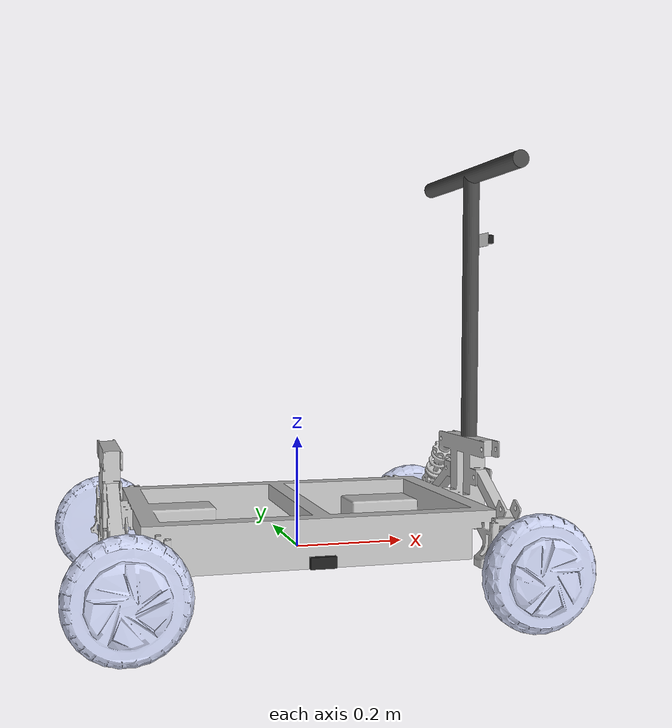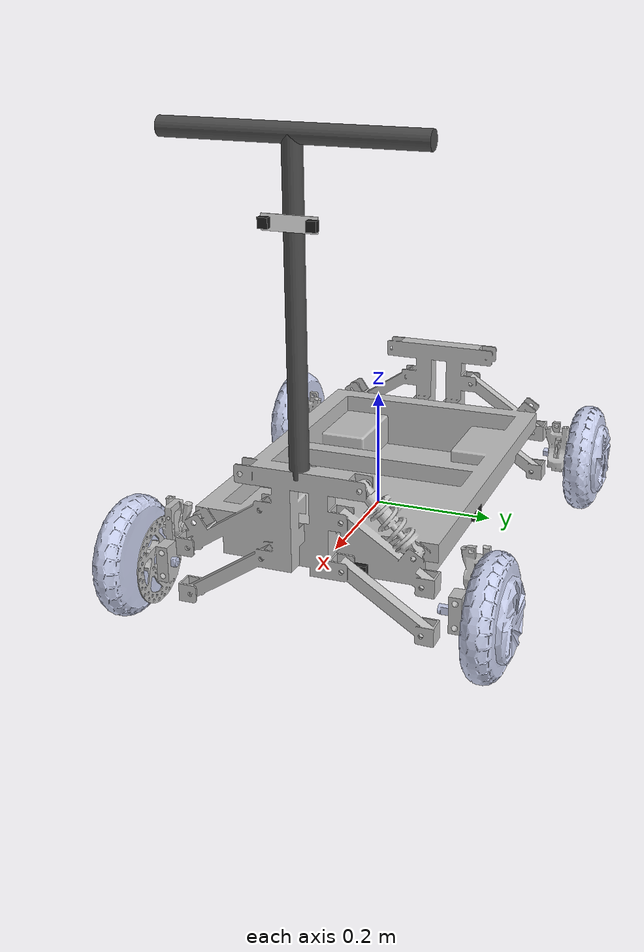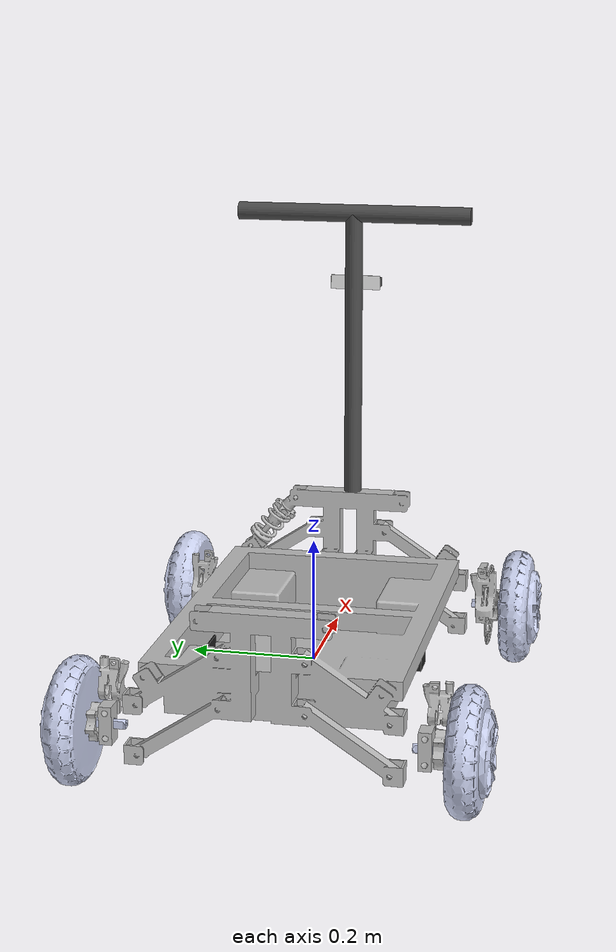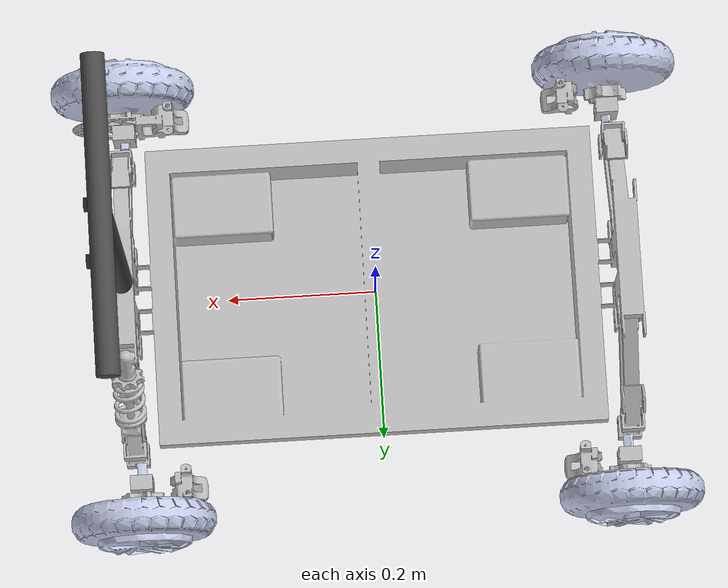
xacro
<?xml version="1.0"?>
<robot xmlns:xacro="https://www.ros.org/wiki/xacro" name="robot">

    <xacro:arg name="controller_yaml" default=""/>
    <xacro:include filename ="my_robot_core.xacro"/>
    <xacro:include filename="control_plugin.xacro"/>
    <xacro:include filename="depth_camera.xacro"/>
    <xacro:include filename="srf05_sensors.xacro"/>
    <xacro:add_drive_plugins controller_yaml="$(arg controller_yaml)"/>
    <xacro:my_robot_core/>

</robot>

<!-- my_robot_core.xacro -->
<robot xmlns:xacro="http://www.ros.org/wiki/xacro">
  <xacro:include filename="inertial_macros.xacro" />
  <xacro:macro name="my_robot_core" params="">

  <!-- BASE_LINK IS NOW AT THE EXACT CENTER OF THE FOUR WHEELS       -->
  <link name="base_link">
  </link>
  <!-- CHASSIS (the old "base") is now attached offset from the      -->
  <!-- centered base_link so everything stays in the same place      -->
  <joint name="chassis_joint" type="fixed">
    <parent link="base_link"/>
    <child link="chassis"/>
    <!-- This moves the entire old robot so base_link ends up in the middle -->
    <origin xyz="-0.4 0.0 0" rpy="0 0 0"/>
  </joint>

  <link name="chassis">
    <xacro:inertial_box mass="25.0" x="0.8" y="0.6108" z="0.15">
    <origin xyz="0.4 0.0 0.0925" rpy= "0 0 0"/>
    </xacro:inertial_box>
    <visual>
      <origin xyz="0.0705 0.3354 0" rpy="0 0 0"/>
      <geometry>
        <mesh filename="file://$(find my_robot_description)/models/my_robot_description/meshes/base_link.stl"/>
      </geometry>
      <material name="">
        <color rgba="0.75294 0.75294 0.75294 1"/>
      </material>
    </visual>

    <collision>
      <origin xyz="0.4 0.0 0.0925" rpy="0 0 0"/>
      <geometry>
        <box size="0.8 0.6108 0.15"/>
      </geometry>
    </collision>
  </link>

  <gazebo reference="chassis">
    <material>Gazebo/DarkGrey</material>
  </gazebo>

  <!-- WHEELS – now attached to the centered base_link               -->

  <!-- BACK LEFT -->
  <joint name="BL_joint" type="continuous">
    <parent link="base_link"/>
    <child link="BL_link"/>
    <origin xyz="-0.3295  0.33054 0" rpy="0 0 0"/>
    <axis xyz="0 1 0"/>
  </joint>

  <!-- BACK RIGHT -->
  <joint name="BR_joint" type="continuous">
    <parent link="base_link"/>
    <child link="BR_link"/>
    <origin xyz="-0.3295 -0.33054 0" rpy="0 0 0"/>
    <axis xyz="0 1 0"/>
  </joint>

  <!-- FRONT LEFT -->
  <joint name="FL_joint" type="continuous">
    <parent link="base_link"/>
    <child link="FL_link"/>
    <origin xyz="0.3295  0.33054 0" rpy="0 0 0"/>
    <axis xyz="0 1 0"/>
  </joint>

  <!-- FRONT RIGHT -->
  <joint name="FR_joint" type="continuous">
    <parent link="base_link"/>
    <child link="FR_link"/>
    <origin xyz="0.3295 -0.33054 0" rpy="0 0 0"/>
    <axis xyz="0 1 0"/>
  </joint>

  <!-- ==================== WHEEL LINKS (unchanged) ==================== -->
  <link name="BL_link">
    <xacro:inertial_cylinder mass="1.4314" radius="0.0925" length="0.04">
    <origin xyz="0 0 0" rpy="${pi/2} 0 0"/>
    </xacro:inertial_cylinder>

    <visual>
      <origin xyz="0 0 0" rpy="0 0 0"/>
      <geometry>
        <mesh filename="file://$(find my_robot_description)/models/my_robot_description/meshes/BL_link.stl"/>
      </geometry>
      <material name=""><color rgba="0.79216 0.81961 0.93333 1"/></material>
    </visual>

    <collision>
      <origin xyz="0 0 0" rpy="${pi/2} 0 0"/>
      <geometry>
        <cylinder length="0.04" radius="0.0925"/>
      </geometry>
    </collision>
  </link>
  <gazebo reference="BL_link">
    <material>Gazebo/Grey</material>
    <mu1>1.0</mu1>
    <mu2>0.1</mu2>
    <fdir1>1 0 0</fdir1>
  </gazebo>

  <link name="BR_link">
    <xacro:inertial_cylinder mass="1.4314" radius="0.0925" length="0.04">
    <origin xyz="0 0 0" rpy="${pi/2} 0 0"/>
    </xacro:inertial_cylinder>

    <visual>
      <origin xyz="0 0 0" rpy="0 0 0"/>
      <geometry>
        <mesh filename="file://$(find my_robot_description)/models/my_robot_description/meshes/BR_link.stl"/>
      </geometry>
      <material name=""><color rgba="0.79216 0.81961 0.93333 1"/></material>
    </visual>

    <collision>
      <origin xyz="0 0 0" rpy="${pi/2} 0 0"/> <geometry>
        <cylinder length="0.04" radius="0.0925"/>
      </geometry>
    </collision>
  </link>
  <gazebo reference="BR_link">
    <material>Gazebo/Grey</material>
    <mu1>1.0</mu1>
    <mu2>0.1</mu2>
    <fdir1>1 0 0</fdir1>
  </gazebo>

  <link name="FL_link">
    <xacro:inertial_cylinder mass="1.4314" radius="0.0925" length="0.04">
    <origin xyz="0 0 0" rpy="${pi/2} 0 0"/>
    </xacro:inertial_cylinder>

    <visual>
      <origin xyz="0 0 0" rpy="0 0 0"/>
      <geometry>
        <mesh filename="file://$(find my_robot_description)/models/my_robot_description/meshes/FL_link.stl"/>
      </geometry>
      <material name=""><color rgba="0.79216 0.81961 0.93333 1"/></material>
    </visual>

    <collision>
      <origin xyz="0 0 0" rpy="${pi/2} 0 0"/>
      <geometry>
        <cylinder length="0.04" radius="0.0925"/>
      </geometry>
    </collision>
    </link>
  <gazebo reference="FL_link">
    <material>Gazebo/Grey</material>
    <mu1>1.0</mu1>
    <mu2>0.1</mu2>
    <fdir1>1 0 0</fdir1>
  </gazebo>

  <link name="FR_link">
    <xacro:inertial_cylinder mass="1.4314" radius="0.0925" length="0.04">
    <origin xyz="0 0 0" rpy="${pi/2} 0 0"/>
    </xacro:inertial_cylinder>

    <visual>
      <origin xyz="0 0 0" rpy="0 0 0"/>
      <geometry>
        <mesh filename="file://$(find my_robot_description)/models/my_robot_description/meshes/FR_link.stl"/>
      </geometry>
      <material name=""><color rgba="0.79216 0.81961 0.93333 1"/></material>
    </visual>

    <collision>
      <origin xyz="0 0 0" rpy="${pi/2} 0 0"/>
      <geometry>
        <cylinder length="0.04" radius="0.0925"/>
      </geometry>
    </collision>
  </link>
  <gazebo reference="FR_link">
    <material>Gazebo/Grey</material>
    <mu1>1.0</mu1>
    <mu2>0.1</mu2>
    <fdir1>1 0 0</fdir1>
  </gazebo>

  <!-- HANDLE (also moved with the same offset) -->
  <joint name="handle_middle_joint" type="fixed">
    <parent link="base_link"/>
    <child link="handle_middle"/>
    <origin xyz="0.3355 0 0.43" rpy="0 0 0"/>
  </joint>

  <link name="handle_middle">
    <visual>
      <origin xyz="0 0 0"/>
      <geometry><cylinder length="0.5" radius="0.015"/></geometry>
    </visual>
    <collision>
      <origin xyz="0 0 0"/>
      <geometry><cylinder length="0.5" radius="0.015"/></geometry>
    </collision>
    <xacro:inertial_cylinder mass="0.1" length="0.5" radius="0.015">
      <origin xyz="0 0 0" rpy="0 0 0"/>
    </xacro:inertial_cylinder>
  </link>
  <gazebo reference="handle_middle"><material>Gazebo/DarkGrey</material></gazebo>

  <joint name="handle_joint" type="fixed">
    <parent link="handle_middle"/>
    <child link="handle"/>
    <origin xyz="0 0 0.25" rpy="${pi/2} 0 0"/>
  </joint>

  <link name="handle">
    <visual>
      <origin xyz="0 0 0"/>
      <geometry><cylinder length="0.4" radius="0.015"/></geometry>
    </visual>
    <collision>
      <origin xyz="0 0 0"/>
      <geometry><cylinder length="0.4" radius="0.015"/></geometry>
    </collision>
    <xacro:inertial_cylinder mass="0.1" length="0.4" radius="0.015">
      <origin xyz="0 0 0" rpy="0 0 0"/>
    </xacro:inertial_cylinder>
  </link>
  <gazebo reference="handle"><material>Gazebo/DarkGrey</material></gazebo>

  <!-- TRANSMISSIONS (unchanged) -->
  <transmission name="left_front_wheel_trans">
    <type>transmission_interface/SimpleTransmission</type>
    <joint name="FL_joint"><hardwareInterface>velocity</hardwareInterface></joint>
    <actuator name="left_front_wheel_motor"><hardwareInterface>velocity</hardwareInterface><mechanicalReduction>1</mechanicalReduction></actuator>
  </transmission>

  <transmission name="left_back_wheel_trans">
    <type>transmission_interface/SimpleTransmission</type>
    <joint name="BL_joint"><hardwareInterface>velocity</hardwareInterface></joint>
    <actuator name="left_back_wheel_motor"><hardwareInterface>velocity</hardwareInterface><mechanicalReduction>1</mechanicalReduction></actuator>
  </transmission>

  <transmission name="right_front_wheel_trans">
    <type>transmission_interface/SimpleTransmission</type>
    <joint name="FR_joint"><hardwareInterface>velocity</hardwareInterface></joint>
    <actuator name="right_front_wheel_motor"><hardwareInterface>velocity</hardwareInterface><mechanicalReduction>1</mechanicalReduction></actuator>
  </transmission>

  <transmission name="right_back_wheel_trans">
    <type>transmission_interface/SimpleTransmission</type>
    <joint name="BR_joint"><hardwareInterface>velocity</hardwareInterface></joint>
    <actuator name="right_back_wheel_motor"><hardwareInterface>velocity</hardwareInterface><mechanicalReduction>1</mechanicalReduction></actuator>
  </transmission>
    <ros2_control name="GazeboSystem" type="system">
  <hardware>
      <plugin>gazebo_ros2_control/GazeboSystem</plugin>
  </hardware>

  <joint name="FL_joint">
      <command_interface name="velocity"/>
      <state_interface name="velocity"/>
      <state_interface name="position"/>
  </joint>

  <joint name="BL_joint">
      <command_interface name="velocity"/>
      <state_interface name="velocity"/>
      <state_interface name="position"/>
  </joint>

  <joint name="FR_joint">
      <command_interface name="velocity"/>
      <state_interface name="velocity"/>
      <state_interface name="position"/>
  </joint>

  <joint name="BR_joint">
      <command_interface name="velocity"/>
      <state_interface name="velocity"/>
      <state_interface name="position"/>
  </joint>
  </ros2_control>
  </xacro:macro>

</robot>

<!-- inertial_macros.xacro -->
<robot xmlns:xacro="http://www.ros.org/wiki/xacro" >

    <!-- Specify some standard inertial calculations https://en.wikipedia.org/wiki/List_of_moments_of_inertia -->
    <!-- These make use of xacro's mathematical functionality -->

    <xacro:macro name="inertial_sphere" params="mass radius *origin">
        <inertial>
            <xacro:insert_block name="origin"/>
            <mass value="${mass}" />
            <inertia ixx="${(2/5) * mass * (radius*radius)}" ixy="0.0" ixz="0.0"
                    iyy="${(2/5) * mass * (radius*radius)}" iyz="0.0"
                    izz="${(2/5) * mass * (radius*radius)}" />
        </inertial>
    </xacro:macro>

    <xacro:macro name="inertial_box" params="mass x y z *origin">
        <inertial>
            <xacro:insert_block name="origin"/>
            <mass value="${mass}" />
            <inertia ixx="${(1/12) * mass * (y*y+z*z)}" ixy="0.0" ixz="0.0"
                    iyy="${(1/12) * mass * (x*x+z*z)}" iyz="0.0"
                    izz="${(1/12) * mass * (x*x+y*y)}" />
        </inertial>
    </xacro:macro>

    <xacro:macro name="inertial_cylinder" params="mass length radius *origin">
        <inertial>
            <xacro:insert_block name="origin"/>
            <mass value="${mass}" />
            <inertia
                ixx="${(1/12) * mass * (3*radius*radius + length*length)}"
                ixy="0.0"
                ixz="0.0"
                iyy="${(1/2) * mass * (radius*radius)}"
                iyz="0.0"
                izz="${(1/12) * mass * (3*radius*radius + length*length)}" />
        </inertial>
    </xacro:macro>
</robot>

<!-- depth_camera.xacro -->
<robot xmlns:xacro="http://www.ros.org/wiki/xacro">
  <!-- Depth camera back link (box) -->
  <joint name="depth_camera_back_joint" type="fixed">
    <parent link="handle_middle"/>
    <child link="depth_camera_back_link"/>
    <origin xyz="0.015 0 0.13" rpy="0 0 0"/>
  </joint>

  <link name="depth_camera_back_link">
    <visual>
      <geometry>
        <box size="0.0016 0.085 0.024"/>
      </geometry>
    </visual>
    <collision>
      <geometry>
        <box size="0.0016 0.085 0.024"/>
      </geometry>
    </collision>
    <xacro:inertial_box mass="0.05" x="0.0016" y="0.085" z="0.024">
      <origin xyz="0 0 0" rpy="0 0 0"/>
    </xacro:inertial_box>
  </link>

  <gazebo reference="depth_camera_back_link">
    <material>Gazebo/White</material>
  </gazebo>

  <!-- Left camera cylinder -->
  <joint name="left_camera_joint" type="fixed">
    <parent link="depth_camera_back_link"/>
    <child link="left_camera_link"/>
    <origin xyz="0.0058 0.036 0" rpy="0 0 0"/> <!-- Rotate to length along x (forward), baseline along y -->
  </joint>

  <link name="left_camera_link">
    <visual>
      <geometry>
        <box size = "0.01 0.0155 0.0155"/> <!-- Length along x (forward) -->
      </geometry>
    </visual>
    <collision>
      <geometry>
        <box size = "0.01 0.0155 0.0155"/>
      </geometry>
    </collision>
    <xacro:inertial_box mass="0.02" x="0.01" y="0.0155" z="0.0155">
      <origin xyz="0 0 0" rpy="0 0 0"/>
    </xacro:inertial_box>
  </link>

  <gazebo reference="left_camera_link">
    <material>Gazebo/Black</material>
    <sensor type="camera" name="left_camera">
      <always_on>true</always_on>
      <visualize>true</visualize>
      <update_rate>10</update_rate>
      <camera>
        <horizontal_fov>1.044815127601244</horizontal_fov>
        <image>
          <width>640</width>
          <height>480</height>
          <format>R8G8B8</format>
        </image>
        <clip>
          <near>0.02</near>
          <far>10.0</far>
        </clip>
      </camera>
      <plugin name="left_camera_controller" filename="libgazebo_ros_camera.so">
        <ros>
          <namespace>/follower_robot/depth_cam</namespace>
          <qos>
            <topic name="/follower_robot/depth_cam/left/image_raw">
                <publisher>
                    <reliability>reliable</reliability>
                </publisher>
            </topic>
            <topic name="/follower_robot/depth_cam/left/camera_info">
                <publisher>
                    <reliability>reliable</reliability>
                </publisher>
            </topic>
          </qos>
        </ros>
        <camera_name>left</camera_name>
        <frame_name>left_camera_link_optical</frame_name>
      </plugin>
    </sensor>
  </gazebo>

  <!-- Left optical frame (view from front flat base) -->
  <joint name="left_camera_optical_joint" type="fixed">
    <parent link="left_camera_link"/>
    <child link="left_camera_link_optical"/>
    <origin xyz="0.01 0 0" rpy="${-pi/2} 0 ${-pi/2}"/> <!-- Shift to front flat (+0.01 x), rotate for ROS optical convention -->
  </joint>

  <link name="left_camera_link_optical"/>

  <!-- Right camera cylinder -->
  <joint name="right_camera_joint" type="fixed">
    <parent link="depth_camera_back_link"/>
    <child link="right_camera_link"/>
    <origin xyz="0.0058 -0.036 0" rpy="0 0 0"/> <!-- Rotate to length along x (forward), baseline along y -->
  </joint>

  <link name="right_camera_link">
    <visual>
      <geometry>
        <box size = "0.01 0.0155 0.0155"/> <!-- Length along x (forward) -->
      </geometry>
    </visual>
    <collision>
      <geometry>
        <box size = "0.01 0.0155 0.0155"/>
      </geometry>
    </collision>
    <xacro:inertial_box mass="0.02" x="0.01" y="0.0155" z="0.0155">
      <origin xyz="0 0 0" rpy="0 0 0"/>
    </xacro:inertial_box>
  </link>

  <gazebo reference="right_camera_link">
    <material>Gazebo/Black</material>
    <sensor type="camera" name="right_camera">
      <always_on>true</always_on>
      <visualize>true</visualize>
      <update_rate>10</update_rate>
      <camera>
        <horizontal_fov>1.044815127601244</horizontal_fov>
        <image>
          <width>640</width>
          <height>480</height>
          <format>R8G8B8</format>
        </image>
        <clip>
          <near>0.02</near>
          <far>10.0</far>
        </clip>
      </camera>
      <plugin name="right_camera_controller" filename="libgazebo_ros_camera.so">
        <ros>
          <namespace>/follower_robot/depth_cam</namespace>
          <qos>
            <topic name="/follower_robot/depth_cam/right/image_raw">
                <publisher>
                    <reliability>reliable</reliability>
                </publisher>
            </topic>
            <topic name="/follower_robot/depth_cam/right/camera_info">
                <publisher>
                    <reliability>reliable</reliability>
                </publisher>
            </topic>
          </qos>
        </ros>
        <camera_name>right</camera_name>  <!-- Sets prefix for topics: /depth_cam/right/image_raw and /depth_cam/right/camera_info -->
        <frame_name>right_camera_link_optical</frame_name>
        <hack_baseline>0.071727</hack_baseline>
      </plugin>
    </sensor>
  </gazebo>

  <!-- Right optical frame (view from front flat base) -->
  <joint name="right_camera_optical_joint" type="fixed">
    <parent link="right_camera_link"/>
    <child link="right_camera_link_optical"/>
    <origin xyz="0.01 0 0" rpy="${-pi/2} 0 ${-pi/2}"/> <!-- Shift to front flat (+0.01 x), rotate for ROS optical convention -->
  </joint>

  <link name="right_camera_link_optical"/>
</robot>

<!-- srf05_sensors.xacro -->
<robot xmlns:xacro="http://www.ros.org/wiki/xacro">

  <!-- ====== SRF05 FRONT-LEFT ====== -->
  <joint name="srf05_front_left_joint" type="fixed">
    <parent link="base_link"/>
    <child link="srf05_front_left_link"/>
    <!-- x: forward, y: left, z: up (tune as needed) -->
    <origin xyz="0.275 0.06 0.01" rpy="0 0 0"/>
  </joint>

  <link name="srf05_front_left_link">
    <visual>
      <geometry>
        <box size="0.01 0.045 0.02"/>
      </geometry>
    </visual>
    <collision>
      <geometry>
        <box size="0.01 0.045 0.02"/>
      </geometry>
    </collision>
    <xacro:inertial_box mass="0.01" x="0.01" y="0.045" z="0.02">
      <origin xyz="0 0 0" rpy="0 0 0"/>
    </xacro:inertial_box>
  </link>

  <gazebo reference="srf05_front_left_link">
    <material>Gazebo/Black</material>
    <sensor type="ray" name="srf05_front_left">
      <always_on>true</always_on>
      <visualize>true</visualize>
      <update_rate>50</update_rate>
      <ray>
        <scan>
          <horizontal>
            <!-- small FOV in front -->
            <samples>5</samples>
            <resolution>1</resolution>
            <min_angle>-0.10</min_angle>
            <max_angle>0.10</max_angle>
          </horizontal>
        </scan>
        <range>
          <min>0.04</min>
          <max>1.0</max>
          <resolution>0.01</resolution>
        </range>
      </ray>
      <plugin name="srf05_front_left_plugin" filename="libgazebo_ros_ray_sensor.so">
        <ros>
          <namespace>/follower_robot</namespace>
          <!-- publishes ~/out under this namespace; you can remap in launch -->
        </ros>
        <output_type>sensor_msgs/Range</output_type>
        <frame_name>srf05_front_left_link</frame_name>
      </plugin>
    </sensor>
  </gazebo>

  <!-- ====== SRF05 FRONT-RIGHT ====== -->
  <joint name="srf05_front_right_joint" type="fixed">
    <parent link="base_link"/>
    <child link="srf05_front_right_link"/>
    <origin xyz="0.275 -0.06 0.01" rpy="0 0 0"/>
  </joint>

  <link name="srf05_front_right_link">
    <visual>
      <geometry>
        <box size="0.01 0.045 0.02"/>
      </geometry>
    </visual>
    <collision>
      <geometry>
        <box size="0.01 0.045 0.02"/>
      </geometry>
    </collision>
    <xacro:inertial_box mass="0.01" x="0.01" y="0.045" z="0.02">
      <origin xyz="0 0 0" rpy="0 0 0"/>
    </xacro:inertial_box>
  </link>

  <gazebo reference="srf05_front_right_link">
    <material>Gazebo/Black</material>
    <sensor type="ray" name="srf05_front_right">
      <always_on>true</always_on>
      <visualize>true</visualize>
      <update_rate>50</update_rate>
      <ray>
        <scan>
          <horizontal>
            <samples>5</samples>
            <resolution>1</resolution>
            <min_angle>-0.10</min_angle>
            <max_angle>0.10</max_angle>
          </horizontal>
        </scan>
        <range>
          <min>0.04</min>
          <max>1.0</max>
          <resolution>0.01</resolution>
        </range>
      </ray>
      <plugin name="srf05_front_right_plugin" filename="libgazebo_ros_ray_sensor.so">
        <ros>
          <namespace>/follower_robot</namespace>
        </ros>
        <output_type>sensor_msgs/Range</output_type>
        <frame_name>srf05_front_right_link</frame_name>
      </plugin>
    </sensor>
  </gazebo>

  <!-- ====== SRF05 LEFT-SIDE (pointing left) ====== -->
  <joint name="srf05_left_side_joint" type="fixed">
    <parent link="base_link"/>
    <child link="srf05_left_side_link"/>
    <!-- put on the left side, yaw +90° so it looks left -->
    <origin xyz="0.0 0.175 0.01" rpy="0 0 ${pi/2}"/>
  </joint>

  <link name="srf05_left_side_link">
    <visual>
      <geometry>
        <box size="0.01 0.045 0.02"/>
      </geometry>
    </visual>
    <collision>
      <geometry>
        <box size="0.01 0.045 0.02"/>
      </geometry>
    </collision>
    <xacro:inertial_box mass="0.01" x="0.01" y="0.045" z="0.02">
      <origin xyz="0 0 0" rpy="0 0 0"/>
    </xacro:inertial_box>
  </link>

  <gazebo reference="srf05_left_side_link">
    <material>Gazebo/Black</material>
    <sensor type="ray" name="srf05_left_side">
      <always_on>true</always_on>
      <visualize>true</visualize>
      <update_rate>50</update_rate>
      <ray>
        <scan>
          <horizontal>
            <samples>5</samples>
            <resolution>1</resolution>
            <min_angle>-0.10</min_angle>
            <max_angle>0.10</max_angle>
          </horizontal>
        </scan>
        <range>
          <min>0.04</min>
          <max>1.0</max>
          <resolution>0.01</resolution>
        </range>
      </ray>
      <plugin name="srf05_left_side_plugin" filename="libgazebo_ros_ray_sensor.so">
        <ros>
          <namespace>/follower_robot</namespace>
        </ros>
        <output_type>sensor_msgs/Range</output_type>
        <frame_name>srf05_left_side_link</frame_name>
      </plugin>
    </sensor>
  </gazebo>

  <!-- ====== SRF05 RIGHT-SIDE (pointing right) ====== -->
  <joint name="srf05_right_side_joint" type="fixed">
    <parent link="base_link"/>
    <child link="srf05_right_side_link"/>
    <!-- right side, yaw -90° so it looks right -->
    <origin xyz="0.0 -0.175 0.01" rpy="0 0 ${-pi/2}"/>
  </joint>

  <link name="srf05_right_side_link">
    <visual>
      <geometry>
        <box size="0.01 0.045 0.02"/>
      </geometry>
    </visual>
    <collision>
      <geometry>
        <box size="0.01 0.045 0.02"/>
      </geometry>
    </collision>
    <xacro:inertial_box mass="0.01" x="0.01" y="0.045" z="0.02">
      <origin xyz="0 0 0" rpy="0 0 0"/>
    </xacro:inertial_box>
  </link>

  <gazebo reference="srf05_right_side_link">
    <material>Gazebo/Black</material>
    <sensor type="ray" name="srf05_right_side">
      <always_on>true</always_on>
      <visualize>true</visualize>
      <update_rate>50</update_rate>
      <ray>
        <scan>
          <horizontal>
            <samples>5</samples>
            <resolution>1</resolution>
            <min_angle>-0.10</min_angle>
            <max_angle>0.10</max_angle>
          </horizontal>
        </scan>
        <range>
          <min>0.04</min>
          <max>1.0</max>
          <resolution>0.01</resolution>
        </range>
      </ray>
      <plugin name="srf05_right_side_plugin" filename="libgazebo_ros_ray_sensor.so">
        <ros>
          <namespace>/follower_robot</namespace>
        </ros>
        <output_type>sensor_msgs/Range</output_type>
        <frame_name>srf05_right_side_link</frame_name>
      </plugin>
    </sensor>
  </gazebo>
</robot>
